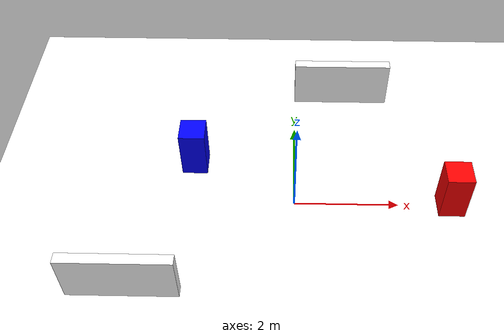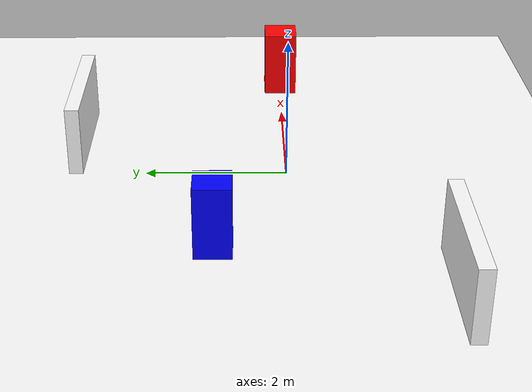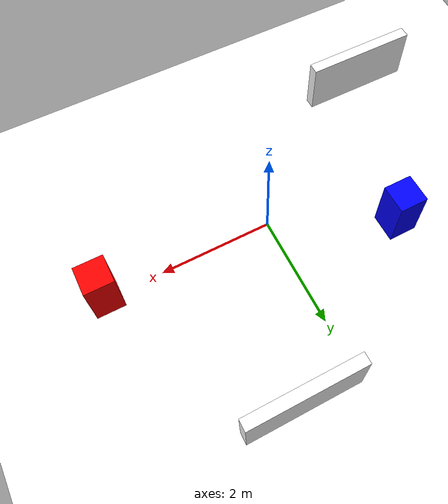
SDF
<sdf version="1.6">
 <world name="simple_world">
  <physics name="4ms" type="ignored">
   <max_step_size>0.004</max_step_size>
   <real_time_factor>1.0</real_time_factor>
  </physics>
  <plugin filename="ignition-gazebo-physics-system" name="ignition::gazebo::systems::Physics"/>
  <plugin filename="ignition-gazebo-sensors-system" name="ignition::gazebo::systems::Sensors">
   <render_engine>ogre2</render_engine>
  </plugin>
  <plugin filename="ignition-gazebo-scene-broadcaster-system" name="ignition::gazebo::systems::SceneBroadcaster"/>
  <plugin filename="ignition-gazebo-user-commands-system" name="ignition::gazebo::systems::UserCommands"/>
  <light name="sun" type="directional"><pose>0 0 10 0 0 0</pose><diffuse>1 1 1 1</diffuse></light>
  <model name="ground_plane">
   <static>true</static>
   <link name="link">
    <collision name="collision"><geometry><plane><normal>0 0 1</normal></plane></geometry></collision>
    <visual name="visual">
     <geometry><plane><normal>0 0 1</normal><size>100 100</size></plane></geometry>
     <material><ambient>1 1 1 1</ambient></material>
    </visual>
   </link>
  </model>
  <model name="red_box">
   <static>true</static>
   <pose>3 0 0.5 0 0 0</pose>
   <link name="link">
    <visual name="visual">
     <geometry><box><size>0.5 0.5 1.0</size></box></geometry>
     <material><ambient>1 0 0 1</ambient><diffuse>1 0 0 1</diffuse></material>
    </visual>
    <collision name="collision"><geometry><box><size>0.5 0.5 1.0</size></box></geometry></collision>
   </link>
  </model>
  <model name="blue_box">
   <static>true</static>
   <pose>-2 1 0.5 0 0 0</pose>
   <link name="link">
    <visual name="visual">
     <geometry><box><size>0.5 0.5 1.0</size></box></geometry>
     <material><ambient>0 0 1 1</ambient><diffuse>0 0 1 1</diffuse></material>
    </visual>
    <collision name="collision"><geometry><box><size>0.5 0.5 1.0</size></box></geometry></collision>
   </link>
  </model>
  <model name="obstacle_1">
   <static>true</static>
   <pose>1 3 0.5 0 0 0</pose>
   <link name="link">
    <visual name="visual">
     <geometry><box><size>2 0.2 1.0</size></box></geometry>
     <material><ambient>1 1 1 1</ambient><diffuse>1 1 1 1</diffuse></material>
    </visual>
    <collision name="collision"><geometry><box><size>2 0.2 1.0</size></box></geometry></collision>
   </link>
  </model>
  <model name="obstacle_2">
   <static>true</static>
   <pose>-3 -2 0.5 0 0 0</pose>
   <link name="link">
    <visual name="visual">
     <geometry><box><size>2 0.2 1.0</size></box></geometry>
     <material><ambient>1 1 1 1</ambient><diffuse>1 1 1 1</diffuse></material>
    </visual>
    <collision name="collision"><geometry><box><size>2 0.2 1.0</size></box></geometry></collision>
   </link>
  </model>
 </world>
</sdf>
